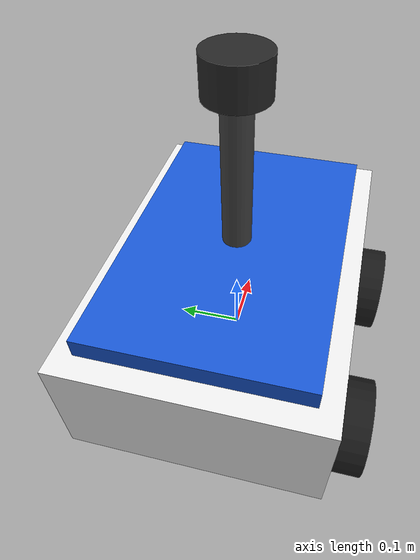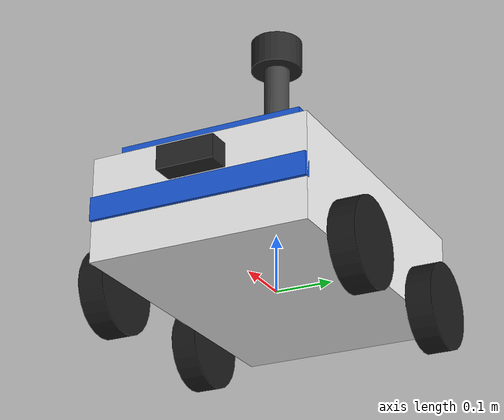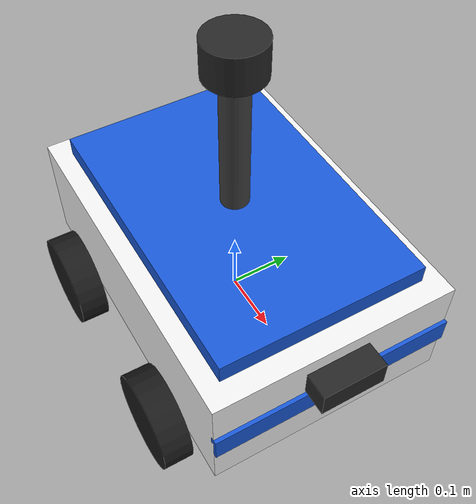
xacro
<?xml version="1.0"?>
<robot xmlns:xacro="http://www.ros.org/wiki/xacro" name="rotav">

  <!--
    ROTA-V v3 — 4 Tekerlekli Skid-Steer
    Tüm 4 tekerlek aktif, caster yok
    Denge mükemmel, zemine takılma yok
  -->

  <!-- ═══ SABİTLER ═══════════════════════════════════════════════ -->
  <xacro:property name="base_l"  value="0.55"/>
  <xacro:property name="base_w"  value="0.38"/>
  <xacro:property name="base_h"  value="0.18"/>
  <xacro:property name="base_m"  value="0.6"/>

  <xacro:property name="wr"   value="0.075"/>  <!-- tekerlek yarıçap -->
  <xacro:property name="ww"   value="0.045"/>  <!-- tekerlek genişlik -->
  <xacro:property name="wm"   value="0.05"/>   <!-- tekerlek kütle -->
  <xacro:property name="wx"   value="0.15"/>   <!-- ön/arka X ofseti -->
  <xacro:property name="wy"   value="0.22"/>   <!-- sol/sağ Y ofseti -->

  <xacro:property name="pole_r"  value="0.022"/>
  <xacro:property name="pole_h"  value="0.22"/>
  <xacro:property name="lid_r"   value="0.045"/>
  <xacro:property name="lid_h"   value="0.055"/>
  <xacro:property name="cam_l"   value="0.04"/>
  <xacro:property name="cam_w"   value="0.10"/>
  <xacro:property name="cam_h"   value="0.04"/>

  <!-- ═══ İNERTİA MAKROLARI ══════════════════════════════════════ -->
  <xacro:macro name="box_i" params="m l w h">
    <inertial>
      <mass value="${m}"/>
      <inertia ixx="${m*(w*w+h*h)/12}" ixy="0" ixz="0"
               iyy="${m*(l*l+h*h)/12}" iyz="0"
               izz="${m*(l*l+w*w)/12}"/>
    </inertial>
  </xacro:macro>

  <xacro:macro name="cyl_i" params="m r h">
    <inertial>
      <mass value="${m}"/>
      <inertia ixx="${m*(3*r*r+h*h)/12}" ixy="0" ixz="0"
               iyy="${m*(3*r*r+h*h)/12}" iyz="0"
               izz="${m*r*r/2}"/>
    </inertial>
  </xacro:macro>

  <!-- ═══ BASE FOOTPRINT ═════════════════════════════════════════ -->
  <link name="base_footprint"/>
  <joint name="base_joint" type="fixed">
    <parent link="base_footprint"/>
    <child  link="base_link"/>
    <origin xyz="0 0 ${wr}" rpy="0 0 0"/>
  </joint>

  <!-- ═══ ANA GÖVDE ══════════════════════════════════════════════ -->
  <link name="base_link">
    <visual>
      <geometry><box size="${base_l} ${base_w} ${base_h}"/></geometry>
      <material name="white"><color rgba="0.95 0.95 0.95 1"/></material>
    </visual>
    <collision>
      <geometry><box size="${base_l} ${base_w} ${base_h}"/></geometry>
    </collision>
    <xacro:box_i m="${base_m}" l="${base_l}" w="${base_w}" h="${base_h}"/>
  </link>

  <!-- Mavi ön şerit -->
  <link name="front_bar">
    <visual>
      <geometry><box size="0.012 ${base_w} 0.04"/></geometry>
      <material name="blue"><color rgba="0.1 0.35 0.85 1"/></material>
    </visual>
    <collision><geometry><box size="0.012 ${base_w} 0.04"/></geometry></collision>
    <inertial><mass value="0.005"/>
      <inertia ixx="1e-7" ixy="0" ixz="0" iyy="1e-7" iyz="0" izz="1e-7"/>
    </inertial>
  </link>
  <joint name="front_bar_j" type="fixed">
    <parent link="base_link"/><child link="front_bar"/>
    <origin xyz="${base_l/2} 0 0" rpy="0 0 0"/>
  </joint>

  <!-- Tepsi -->
  <link name="tray">
    <visual>
      <geometry><box size="0.48 0.32 0.03"/></geometry>
      <material name="blue2"><color rgba="0.1 0.35 0.85 1"/></material>
    </visual>
    <collision><geometry><box size="0.48 0.32 0.03"/></geometry></collision>
    <xacro:box_i m="0.03" l="0.48" w="0.32" h="0.03"/>
  </link>
  <joint name="tray_j" type="fixed">
    <parent link="base_link"/><child link="tray"/>
    <origin xyz="0 0 ${base_h/2+0.015}" rpy="0 0 0"/>
  </joint>

  <!-- ═══ 4 AKTİF TEKERLEK ════════════════════════════════════════
       front_left  / front_right
       rear_left   / rear_right
  ══════════════════════════════════════════════════════════════ -->
  <xacro:macro name="wheel" params="name xpos yside">
    <link name="${name}_wheel">
      <visual>
        <origin rpy="${pi/2} 0 0"/>
        <geometry><cylinder radius="${wr}" length="${ww}"/></geometry>
        <material name="dark"><color rgba="0.1 0.1 0.1 1"/></material>
      </visual>
      <collision>
        <origin rpy="${pi/2} 0 0"/>
        <geometry><cylinder radius="${wr}" length="${ww}"/></geometry>
      </collision>
      <xacro:cyl_i m="${wm}" r="${wr}" h="${ww}"/>
    </link>
    <joint name="${name}_wheel_j" type="continuous">
      <parent link="base_link"/>
      <child  link="${name}_wheel"/>
      <origin xyz="${xpos} ${yside*wy} ${-base_h/2}" rpy="0 0 0"/>
      <axis xyz="0 1 0"/>
      <dynamics damping="0.01" friction="0.01"/>
      <limit effort="2.0" velocity="8.0"/>
    </joint>
  </xacro:macro>

  <xacro:wheel name="front_left"   xpos=" ${wx}" yside=" 1"/>
  <xacro:wheel name="front_right"  xpos=" ${wx}" yside="-1"/>
  <xacro:wheel name="rear_left"    xpos="-${wx}" yside=" 1"/>
  <xacro:wheel name="rear_right"   xpos="-${wx}" yside="-1"/>

  <!-- ═══ LİDAR DİREĞİ + LİDAR ══════════════════════════════════ -->
  <link name="lidar_pole">
    <visual>
      <geometry><cylinder radius="${pole_r}" length="${pole_h}"/></geometry>
      <material name="dgrey"><color rgba="0.25 0.25 0.25 1"/></material>
    </visual>
    <collision><geometry><cylinder radius="${pole_r}" length="${pole_h}"/></geometry></collision>
    <xacro:cyl_i m="0.02" r="${pole_r}" h="${pole_h}"/>
  </link>
  <joint name="lidar_pole_j" type="fixed">
    <parent link="tray"/><child link="lidar_pole"/>
    <origin xyz="0 0 ${0.015+pole_h/2}" rpy="0 0 0"/>
  </joint>

  <link name="lidar_link">
    <visual>
      <geometry><cylinder radius="${lid_r}" length="${lid_h}"/></geometry>
      <material name="dgrey2"><color rgba="0.15 0.15 0.15 1"/></material>
    </visual>
    <collision><geometry><cylinder radius="${lid_r}" length="${lid_h}"/></geometry></collision>
    <xacro:cyl_i m="0.015" r="${lid_r}" h="${lid_h}"/>
  </link>
  <joint name="lidar_j" type="fixed">
    <parent link="lidar_pole"/><child link="lidar_link"/>
    <origin xyz="0 0 ${pole_h/2+lid_h/2}" rpy="0 0 0"/>
  </joint>

  <!-- ═══ MONOKüLER KAMERA ════════════════════════════════════════ -->
  <link name="camera_link">
    <visual>
      <geometry><box size="${cam_l} ${cam_w} ${cam_h}"/></geometry>
      <material name="cam_col"><color rgba="0.15 0.15 0.15 1"/></material>
    </visual>
    <collision><geometry><box size="${cam_l} ${cam_w} ${cam_h}"/></geometry></collision>
    <xacro:box_i m="0.015" l="${cam_l}" w="${cam_w}" h="${cam_h}"/>
  </link>
  <joint name="camera_j" type="fixed">
    <parent link="base_link"/><child link="camera_link"/>
    <origin xyz="${base_l/2+cam_l/2} 0 ${base_h/4}" rpy="0 0 0"/>
  </joint>

  <link name="camera_optical"/>
  <joint name="camera_optical_j" type="fixed">
    <parent link="camera_link"/><child link="camera_optical"/>
    <origin xyz="0 0 0" rpy="${-pi/2} 0 ${-pi/2}"/>
  </joint>

  <!-- ═══ GAZEBO MALZEMELERİ ══════════════════════════════════════ -->
  <gazebo reference="base_link">   <material>Gazebo/White</material></gazebo>
  <gazebo reference="front_bar">   <material>Gazebo/Blue</material></gazebo>
  <gazebo reference="tray">        <material>Gazebo/Blue</material></gazebo>
  <gazebo reference="lidar_pole">  <material>Gazebo/DarkGrey</material></gazebo>
  <gazebo reference="lidar_link">  <material>Gazebo/DarkGrey</material></gazebo>
  <gazebo reference="camera_link"> <material>Gazebo/DarkGrey</material></gazebo>

  <!-- 4 tekerlek aynı fizik ayarı -->
  <xacro:macro name="wheel_gazebo" params="name">
    <gazebo reference="${name}_wheel">
      <material>Gazebo/Black</material>
      <mu1>0.9</mu1>
      <mu2>0.9</mu2>
      <kp>1e6</kp>
      <kd>10.0</kd>
      <minDepth>0.001</minDepth>
      <maxVel>0.1</maxVel>
    </gazebo>
  </xacro:macro>

  <xacro:wheel_gazebo name="front_left"/>
  <xacro:wheel_gazebo name="front_right"/>
  <xacro:wheel_gazebo name="rear_left"/>
  <xacro:wheel_gazebo name="rear_right"/>

  <!-- ═══ PLUGİN 1a — ARKA TEKERLEKLER (odom + tf yayar) ════════ -->
  <gazebo>
    <plugin name="rotav_rear_drive" filename="libgazebo_ros_diff_drive.so">
      <ros>
        <namespace>/rotav</namespace>
        <remapping>cmd_vel:=cmd_vel</remapping>
        <remapping>odom:=odom</remapping>
      </ros>
      <left_joint>rear_left_wheel_j</left_joint>
      <right_joint>rear_right_wheel_j</right_joint>
      <wheel_separation>${2.0*wy}</wheel_separation>
      <wheel_diameter>${2.0*wr}</wheel_diameter>
      <max_wheel_torque>1.5</max_wheel_torque>
      <max_wheel_acceleration>1.0</max_wheel_acceleration>
      <odometry_frame>odom</odometry_frame>
      <robot_base_frame>base_footprint</robot_base_frame>
      <publish_odom>true</publish_odom>
      <publish_odom_tf>true</publish_odom_tf>
      <publish_wheel_tf>false</publish_wheel_tf>
      <update_rate>50</update_rate>
    </plugin>
  </gazebo>

  <!-- ═══ PLUGİN 1b — ÖN TEKERLEKLER (sadece hareket, odom yok) ═ -->
  <gazebo>
    <plugin name="rotav_front_drive" filename="libgazebo_ros_diff_drive.so">
      <ros>
        <namespace>/rotav</namespace>
        <remapping>cmd_vel:=cmd_vel</remapping>
        <remapping>odom:=odom_front</remapping>
      </ros>
      <left_joint>front_left_wheel_j</left_joint>
      <right_joint>front_right_wheel_j</right_joint>
      <wheel_separation>${2.0*wy}</wheel_separation>
      <wheel_diameter>${2.0*wr}</wheel_diameter>
      <max_wheel_torque>1.5</max_wheel_torque>
      <max_wheel_acceleration>1.0</max_wheel_acceleration>
      <odometry_frame>odom</odometry_frame>
      <robot_base_frame>base_footprint</robot_base_frame>
      <publish_odom>false</publish_odom>
      <publish_odom_tf>false</publish_odom_tf>
      <publish_wheel_tf>false</publish_wheel_tf>
      <update_rate>50</update_rate>
    </plugin>
  </gazebo>

  <!-- ═══ PLUGİN 2 — 2D LİDAR ════════════════════════════════════ -->
  <gazebo reference="lidar_link">
    <sensor type="ray" name="rotav_lidar">
      <pose>0 0 0 0 0 0</pose>
      <visualize>false</visualize>
      <update_rate>10</update_rate>
      <ray>
        <scan>
          <horizontal>
            <samples>720</samples>
            <resolution>1</resolution>
            <min_angle>-3.14159265</min_angle>
            <max_angle> 3.14159265</max_angle>
          </horizontal>
        </scan>
        <range>
          <min>0.15</min>
          <max>12.0</max>
          <resolution>0.01</resolution>
        </range>
        <noise>
          <type>gaussian</type>
          <mean>0.0</mean>
          <stddev>0.008</stddev>
        </noise>
      </ray>
      <plugin name="rotav_lidar_plugin" filename="libgazebo_ros_ray_sensor.so">
        <ros>
          <namespace>/rotav</namespace>
          <remapping>~/out:=scan</remapping>
        </ros>
        <output_type>sensor_msgs/LaserScan</output_type>
        <frame_name>lidar_link</frame_name>
      </plugin>
    </sensor>
  </gazebo>

  <!-- ═══ PLUGİN 3 — MONOKüLER KAMERA ═══════════════════════════ -->
  <gazebo reference="camera_link">
    <sensor type="camera" name="rotav_camera">
      <update_rate>30.0</update_rate>
      <visualize>false</visualize>
      <camera name="front_cam">
        <horizontal_fov>1.2217</horizontal_fov>
        <image>
          <width>640</width>
          <height>480</height>
          <format>R8G8B8</format>
        </image>
        <clip><near>0.05</near><far>50.0</far></clip>
        <noise>
          <type>gaussian</type>
          <mean>0.0</mean>
          <stddev>0.005</stddev>
        </noise>
      </camera>
      <plugin name="rotav_camera_plugin" filename="libgazebo_ros_camera.so">
        <ros>
          <namespace>/rotav</namespace>
          <remapping>image_raw:=camera/image_raw</remapping>
          <remapping>camera_info:=camera/camera_info</remapping>
        </ros>
        <camera_name>front_cam</camera_name>
        <frame_name>camera_optical</frame_name>
      </plugin>
    </sensor>
  </gazebo>

</robot>
